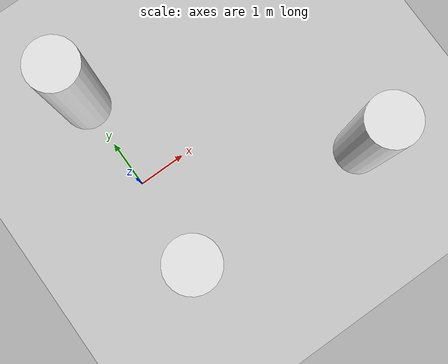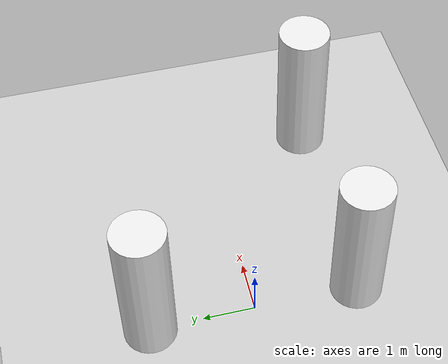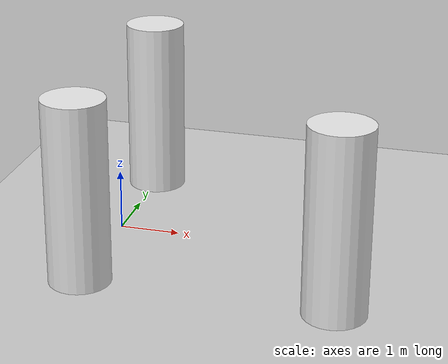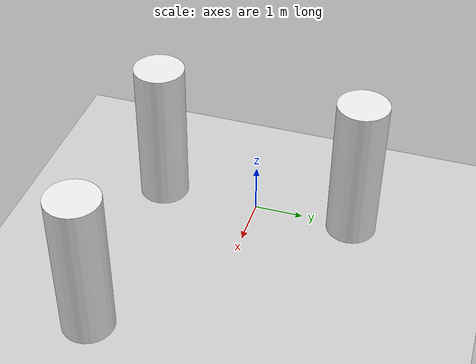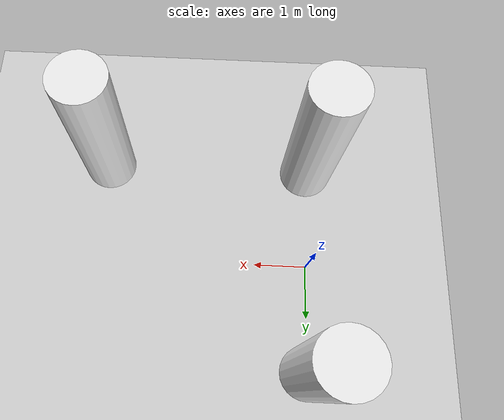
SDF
<?xml version="1.0"?>
<sdf version="1.6">
  <world name="default">

    <!-- pose of the camera -->
    <gui>
      <camera name="user_camera">
        <pose>0. 0. 10.  0. 1.57 0.</pose>
      </camera>
    </gui>

    <scene>
      <ambient>0.4 0.4 0.4 1</ambient>
      <background>0.7 0.7 0.7 1</background>
      <shadows>true</shadows>
    </scene>

    <!-- A ground plane -->
    <include>
      <uri>model://ground_plane</uri>
    </include>

    <physics type="ode">
      <max_step_size>0.001</max_step_size>
      <ode>
        <solver>
          <type>quick</type>
          <iters>150</iters>
          <sor>1.4</sor>
          <use_dynamic_moi_rescaling>1</use_dynamic_moi_rescaling>
        </solver>
        <constraints>
          <cfm>0.00001</cfm>
          <erp>0.2</erp>
          <contact_max_correcting_vel>2000.000000</contact_max_correcting_vel>
          <contact_surface_layer>0.01000</contact_surface_layer>
        </constraints>
      </ode>
    </physics>

    <!-- world components -->
    <model name='ros_symbol'>
        <static>1</static>
        <link name='column1'>
            <collision name='column'>
              <pose>0 +2 1.5 0 0 0</pose>
              <geometry>
                  <cylinder>
                    <radius>0.5</radius>
                    <length>3.0</length>
                  </cylinder>
              </geometry>
            </collision>
            <visual name='column'>
              <pose>0 +2 1.5 0 0 0</pose>
              <geometry>
                  <cylinder>
                    <radius>0.5</radius>
                    <length>3.0</length>
                  </cylinder>
              </geometry>
              <material>
                  <script>
                    <uri>file://media/materials/scripts/gazebo.material</uri>
                    <name>Gazebo/White</name>
                  </script>
              </material>
            </visual>
        </link>
        <link name='column2'>
            <collision name='column'>
              <pose>0 -2 1.5 0 0 0</pose>
              <geometry>
                  <cylinder>
                    <radius>0.5</radius>
                    <length>3.0</length>
                  </cylinder>
              </geometry>
            </collision>
            <visual name='column'>
              <pose>0 -2 1.5 0 0 0</pose>
              <geometry>
                  <cylinder>
                    <radius>0.5</radius>
                    <length>3.0</length>
                  </cylinder>
              </geometry>
              <material>
                  <script>
                    <uri>file://media/materials/scripts/gazebo.material</uri>
                    <name>Gazebo/White</name>
                  </script>
              </material>
            </visual>
        </link>
        <link name='column3'>
            <collision name='column'>
              <pose>4 -2 1.5 0 0 0</pose>
              <geometry>
                  <cylinder>
                    <radius>0.5</radius>
                    <length>3.0</length>
                  </cylinder>
              </geometry>
            </collision>
            <visual name='column'>
              <pose>4 -2 1.5 0 0 0</pose>
              <geometry>
                  <cylinder>
                    <radius>0.5</radius>
                    <length>3.0</length>
                  </cylinder>
              </geometry>
              <material>
                  <script>
                    <uri>file://media/materials/scripts/gazebo.material</uri>
                    <name>Gazebo/White</name>
                  </script>
              </material>
            </visual>
        </link>
    </model>

  </world>
</sdf>
